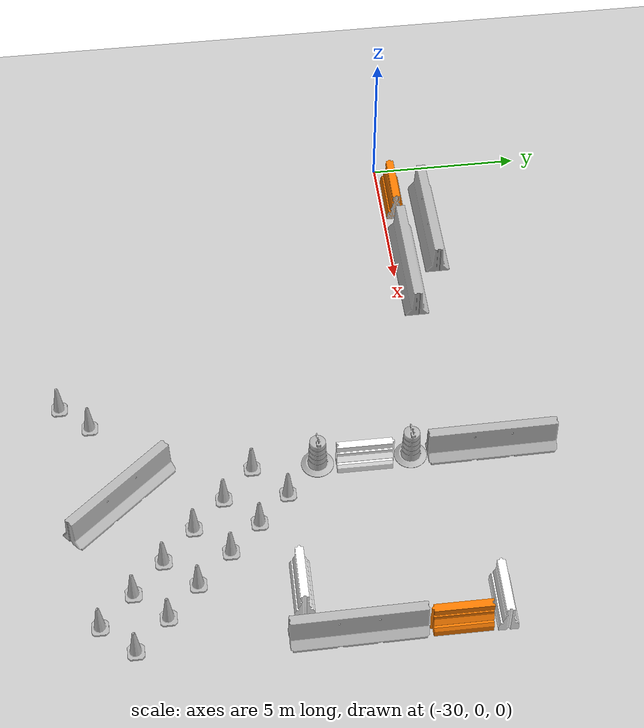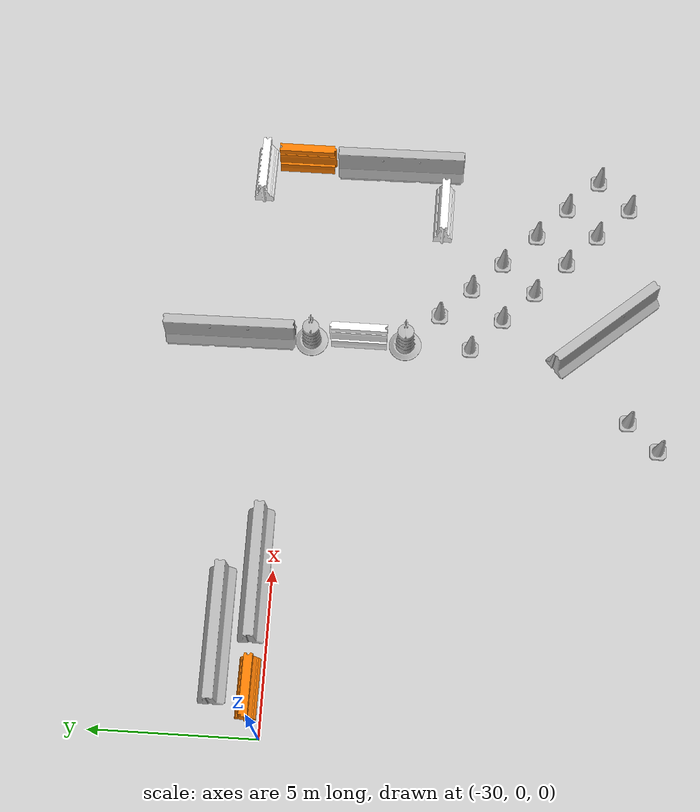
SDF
<sdf version="1.6">
 <world name="default">
  <model name="ground_plane">
   <static>1</static>
   <link name="link">
    <collision name="collision">
     <geometry><plane><normal>0 0 1</normal><size>100 100</size></plane></geometry>
     <surface>
      <contact><collide_bitmask>65535</collide_bitmask></contact>
      <friction><ode><mu>100</mu><mu2>50</mu2></ode></friction>
     </surface>
    </collision>
    <visual name="visual">
     <cast_shadows>0</cast_shadows>
     <geometry><plane><normal>0 0 1</normal><size>100 100</size></plane></geometry>
     <material>
      <script><uri>file://media/materials/scripts/gazebo.material</uri><name>Gazebo/Grey</name></script>
     </material>
    </visual>
   </link>
  </model>
  <model name="jersey_barrier_clone_clone_clone_clone_clone_clone_clone_clone_clone_clone_clone_2">
   <static>1</static>
   <link name="link">
    <visual name="visual">
     <geometry><mesh><uri>model://jersey_barrier/meshes/jersey_barrier.dae</uri></mesh></geometry>
    </visual>
    <collision name="upright">
     <pose>0 0 0.5715 0 -0 0</pose>
     <geometry><box><size>4.06542 0.3063 1.143</size></box></geometry>
    </collision>
    <collision name="base">
     <pose>0 0 0.032258 0 -0 0</pose>
     <geometry><box><size>4.06542 0.8107 0.064516</size></box></geometry>
    </collision>
    <collision name="base2">
     <pose>0 0 0.1 0 -0 0</pose>
     <geometry><box><size>4.06542 0.65 0.1</size></box></geometry>
    </collision>
    <collision name="base3">
     <pose>0 0 0.2 0 -0 0</pose>
     <geometry><box><size>4.06542 0.5 0.1</size></box></geometry>
    </collision>
    <collision name="left-angle">
     <pose>0 -0.224 0.2401 0.9 -0 0</pose>
     <geometry><box><size>4.06542 0.5 0.064516</size></box></geometry>
    </collision>
    <collision name="right-angle">
     <pose>0 0.224 0.2401 -0.9 0 0</pose>
     <geometry><box><size>4.06542 0.5 0.064516</size></box></geometry>
    </collision>
   </link>
   <pose>-17.4835 1.92155 0 0 0 -1.56391</pose>
  </model>
  <model name="Construction Barrel_clone_clone_0_clone_clone_0_clone_clone_0_clone">
   <static>1</static>
   <link name="link">
    <inertial>
     <pose>0 0 0.4 0 -0 0</pose>
     <mass>500</mass>
     <inertia><ixx>51.2096</ixx><iyy>51.2096</iyy><izz>25</izz><ixy>0</ixy><ixz>0</ixz><iyz>0</iyz></inertia>
    </inertial>
    <collision name="collision">
     <geometry><mesh><uri>model://construction_barrel/meshes/construction_barrel.dae</uri></mesh></geometry>
    </collision>
    <visual name="visual">
     <geometry><mesh><uri>model://construction_barrel/meshes/construction_barrel.dae</uri></mesh></geometry>
    </visual>
   </link>
   <pose>-17.5265 -0.623393 -0 0 -0 0.033676</pose>
  </model>
  <model name="drc_practice_white_jersey_barrier_clone_clone_clone_0_clone_0_clone_clone_0_clone_clone_0_clone">
   <static>1</static>
   <link name="link">
    <visual name="visual">
     <geometry>
      <mesh><uri>model://drc_practice_white_jersey_barrier/meshes/jersey_barrier.dae</uri></mesh>
     </geometry>
    </visual>
    <collision name="collision">
     <geometry>
      <mesh><uri>model://drc_practice_white_jersey_barrier/meshes/jersey_barrier.dae</uri></mesh>
     </geometry>
    </collision>
   </link>
   <pose>-17.3927 -2.11412 0 0 -0 3.13979</pose>
  </model>
  <model name="Construction Barrel_clone_clone_0_clone_clone_0_clone_clone_0_clone_clone">
   <static>1</static>
   <link name="link">
    <inertial>
     <pose>0 0 0.4 0 -0 0</pose>
     <mass>500</mass>
     <inertia><ixx>51.2096</ixx><iyy>51.2096</iyy><izz>25</izz><ixy>0</ixy><ixz>0</ixz><iyz>0</iyz></inertia>
    </inertial>
    <collision name="collision">
     <geometry><mesh><uri>model://construction_barrel/meshes/construction_barrel.dae</uri></mesh></geometry>
    </collision>
    <visual name="visual">
     <geometry><mesh><uri>model://construction_barrel/meshes/construction_barrel.dae</uri></mesh></geometry>
    </visual>
   </link>
   <pose>-17.5189 -3.5582 -1e-06 3e-06 9e-06 0.032844</pose>
  </model>
  <model name="drc_practice_organge_jersey_barrier_clone_clone_clone_2_clone_0_clone_clone_clone">
   <static>1</static>
   <link name="link">
    <visual name="visual">
     <geometry>
      <mesh><uri>model://drc_practice_orange_jersey_barrier/meshes/jersey_barrier.dae</uri></mesh>
     </geometry>
    </visual>
    <collision name="collision">
     <geometry>
      <mesh><uri>model://drc_practice_orange_jersey_barrier/meshes/jersey_barrier.dae</uri></mesh>
     </geometry>
    </collision>
   </link>
   <pose>-28.5613 0.437312 0 0 0 -1.57472</pose>
  </model>
  <model name="drc_practice_white_jersey_barrier_clone_clone_clone_clone_clone_clone_clone_clone_clone_clone_0_clone_clone_1_clone">
   <static>1</static>
   <link name="link">
    <visual name="visual">
     <geometry>
      <mesh><uri>model://drc_practice_white_jersey_barrier/meshes/jersey_barrier.dae</uri></mesh>
     </geometry>
    </visual>
    <collision name="collision">
     <geometry>
      <mesh><uri>model://drc_practice_white_jersey_barrier/meshes/jersey_barrier.dae</uri></mesh>
     </geometry>
    </collision>
   </link>
   <pose>-11.8436 1.26227 0 0 0 -1.58176</pose>
  </model>
  <model name="drc_practice_organge_jersey_barrier_clone_clone_0_clone_0_clone_0_clone_clone_clone_1">
   <static>1</static>
   <link name="link">
    <visual name="visual">
     <geometry>
      <mesh><uri>model://drc_practice_orange_jersey_barrier/meshes/jersey_barrier.dae</uri></mesh>
     </geometry>
    </visual>
    <collision name="collision">
     <geometry>
      <mesh><uri>model://drc_practice_orange_jersey_barrier/meshes/jersey_barrier.dae</uri></mesh>
     </geometry>
    </collision>
   </link>
   <pose>-11.3042 -0.061395 0 0 -0 0</pose>
  </model>
  <model name="jersey_barrier_clone_clone_clone_clone_clone_clone_clone_clone_clone_clone_clone_clone_0">
   <static>1</static>
   <link name="link">
    <visual name="visual">
     <geometry><mesh><uri>model://jersey_barrier/meshes/jersey_barrier.dae</uri></mesh></geometry>
    </visual>
    <collision name="upright">
     <pose>0 0 0.5715 0 -0 0</pose>
     <geometry><box><size>4.06542 0.3063 1.143</size></box></geometry>
    </collision>
    <collision name="base">
     <pose>0 0 0.032258 0 -0 0</pose>
     <geometry><box><size>4.06542 0.8107 0.064516</size></box></geometry>
    </collision>
    <collision name="base2">
     <pose>0 0 0.1 0 -0 0</pose>
     <geometry><box><size>4.06542 0.65 0.1</size></box></geometry>
    </collision>
    <collision name="base3">
     <pose>0 0 0.2 0 -0 0</pose>
     <geometry><box><size>4.06542 0.5 0.1</size></box></geometry>
    </collision>
    <collision name="left-angle">
     <pose>0 -0.224 0.2401 0.9 -0 0</pose>
     <geometry><box><size>4.06542 0.5 0.064516</size></box></geometry>
    </collision>
    <collision name="right-angle">
     <pose>0 0.224 0.2401 -0.9 0 0</pose>
     <geometry><box><size>4.06542 0.5 0.064516</size></box></geometry>
    </collision>
   </link>
   <pose>-11.3654 -3.10507 0 0 0 -1.56391</pose>
  </model>
  <model name="drc_practice_white_jersey_barrier_clone_clone_clone_clone_clone_clone_clone_clone_clone_clone_0_clone_clone_1_clone_clone">
   <static>1</static>
   <link name="link">
    <visual name="visual">
     <geometry>
      <mesh><uri>model://drc_practice_white_jersey_barrier/meshes/jersey_barrier.dae</uri></mesh>
     </geometry>
    </visual>
    <collision name="collision">
     <geometry>
      <mesh><uri>model://drc_practice_white_jersey_barrier/meshes/jersey_barrier.dae</uri></mesh>
     </geometry>
    </collision>
   </link>
   <pose>-12.9826 -4.57077 0 0 0 -1.58176</pose>
  </model>
  <model name="Construction Cone_0_clone_0_clone_clone_clone_clone_clone_3_clone_0_clone_clone_clone_1_clone_1_clone_clone_clone_0_clone_5_clone_4">
   <static>1</static>
   <link name="link">
    <collision name="collision">
     <geometry>
      <mesh><scale>10 10 10</scale><uri>model://construction_cone/meshes/construction_cone.dae</uri></mesh>
     </geometry>
    </collision>
    <visual name="visual">
     <geometry>
      <mesh><scale>10 10 10</scale><uri>model://construction_cone/meshes/construction_cone.dae</uri></mesh>
     </geometry>
    </visual>
    <inertial>
     <inertia><ixx>1</ixx><ixy>0</ixy><ixz>0</ixz><iyy>1</iyy><iyz>0</iyz><izz>1</izz></inertia>
     <mass>1</mass>
    </inertial>
   </link>
   <pose>-16.4643 -4.59753 -0 0 0 -0.001073</pose>
  </model>
  <model name="Construction Cone_0_clone_0_clone_clone_clone_clone_clone_3_clone_0_clone_clone_clone_1_clone_1_clone_clone_clone_0_clone_5_clone_5">
   <static>1</static>
   <link name="link">
    <collision name="collision">
     <geometry>
      <mesh><scale>10 10 10</scale><uri>model://construction_cone/meshes/construction_cone.dae</uri></mesh>
     </geometry>
    </collision>
    <visual name="visual">
     <geometry>
      <mesh><scale>10 10 10</scale><uri>model://construction_cone/meshes/construction_cone.dae</uri></mesh>
     </geometry>
    </visual>
    <inertial>
     <inertia><ixx>1</ixx><ixy>0</ixy><ixz>0</ixz><iyy>1</iyy><iyz>0</iyz><izz>1</izz></inertia>
     <mass>1</mass>
    </inertial>
   </link>
   <pose>-15.5027 -5.57397 -0 -0 -0 -0.001073</pose>
  </model>
  <model name="Construction Cone_0_clone_0_clone_clone_clone_clone_clone_3_clone_0_clone_clone_clone_1_clone_1_clone_clone_clone_0_clone_5_clone_6">
   <static>1</static>
   <link name="link">
    <collision name="collision">
     <geometry>
      <mesh><scale>10 10 10</scale><uri>model://construction_cone/meshes/construction_cone.dae</uri></mesh>
     </geometry>
    </collision>
    <visual name="visual">
     <geometry>
      <mesh><scale>10 10 10</scale><uri>model://construction_cone/meshes/construction_cone.dae</uri></mesh>
     </geometry>
    </visual>
    <inertial>
     <inertia><ixx>1</ixx><ixy>0</ixy><ixz>0</ixz><iyy>1</iyy><iyz>0</iyz><izz>1</izz></inertia>
     <mass>1</mass>
    </inertial>
   </link>
   <pose>-14.5585 -6.5324 -0 0 0 -0.001073</pose>
  </model>
  <model name="Construction Cone_0_clone_0_clone_clone_clone_clone_clone_3_clone_0_clone_clone_clone_1_clone_1_clone_clone_clone_0_clone_5_clone_7">
   <static>1</static>
   <link name="link">
    <collision name="collision">
     <geometry>
      <mesh><scale>10 10 10</scale><uri>model://construction_cone/meshes/construction_cone.dae</uri></mesh>
     </geometry>
    </collision>
    <visual name="visual">
     <geometry>
      <mesh><scale>10 10 10</scale><uri>model://construction_cone/meshes/construction_cone.dae</uri></mesh>
     </geometry>
    </visual>
    <inertial>
     <inertia><ixx>1</ixx><ixy>0</ixy><ixz>0</ixz><iyy>1</iyy><iyz>0</iyz><izz>1</izz></inertia>
     <mass>1</mass>
    </inertial>
   </link>
   <pose>-13.5255 -7.59744 -7e-06 6e-06 -0 -0.001073</pose>
  </model>
  <model name="Construction Cone_0_clone_0_clone_clone_clone_clone_clone_3_clone_0_clone_clone_clone_1_clone_1_clone_clone_clone_0_clone_5_clone_8">
   <static>1</static>
   <link name="link">
    <collision name="collision">
     <geometry>
      <mesh><scale>10 10 10</scale><uri>model://construction_cone/meshes/construction_cone.dae</uri></mesh>
     </geometry>
    </collision>
    <visual name="visual">
     <geometry>
      <mesh><scale>10 10 10</scale><uri>model://construction_cone/meshes/construction_cone.dae</uri></mesh>
     </geometry>
    </visual>
    <inertial>
     <inertia><ixx>1</ixx><ixy>0</ixy><ixz>0</ixz><iyy>1</iyy><iyz>0</iyz><izz>1</izz></inertia>
     <mass>1</mass>
    </inertial>
   </link>
   <pose>-12.4931 -8.55582 -0 0 -1e-06 -0.001073</pose>
  </model>
  <model name="Construction Cone_0_clone_0_clone_clone_clone_clone_clone_3_clone_0_clone_clone_clone_1_clone_1_clone_clone_clone_0_clone_5_clone_9">
   <static>1</static>
   <link name="link">
    <collision name="collision">
     <geometry>
      <mesh><scale>10 10 10</scale><uri>model://construction_cone/meshes/construction_cone.dae</uri></mesh>
     </geometry>
    </collision>
    <visual name="visual">
     <geometry>
      <mesh><scale>10 10 10</scale><uri>model://construction_cone/meshes/construction_cone.dae</uri></mesh>
     </geometry>
    </visual>
    <inertial>
     <inertia><ixx>1</ixx><ixy>0</ixy><ixz>0</ixz><iyy>1</iyy><iyz>0</iyz><izz>1</izz></inertia>
     <mass>1</mass>
    </inertial>
   </link>
   <pose>-11.4784 -9.56744 -1e-05 0 0 -0.001073</pose>
  </model>
  <model name="Construction Cone_0_clone_0_clone_clone_clone_clone_clone_3_clone_0_clone_clone_clone_1_clone_1_clone_clone_clone_0_clone_5_clone_10">
   <static>1</static>
   <link name="link">
    <collision name="collision">
     <geometry>
      <mesh><scale>10 10 10</scale><uri>model://construction_cone/meshes/construction_cone.dae</uri></mesh>
     </geometry>
    </collision>
    <visual name="visual">
     <geometry>
      <mesh><scale>10 10 10</scale><uri>model://construction_cone/meshes/construction_cone.dae</uri></mesh>
     </geometry>
    </visual>
    <inertial>
     <inertia><ixx>1</ixx><ixy>0</ixy><ixz>0</ixz><iyy>1</iyy><iyz>0</iyz><izz>1</izz></inertia>
     <mass>1</mass>
    </inertial>
   </link>
   <pose>-17.5473 -5.60449 -0 0 -1e-06 -0.001073</pose>
  </model>
  <model name="Construction Cone_0_clone_0_clone_clone_clone_clone_clone_3_clone_0_clone_clone_clone_1_clone_1_clone_clone_clone_0_clone_5_clone_11">
   <static>1</static>
   <link name="link">
    <collision name="collision">
     <geometry>
      <mesh><scale>10 10 10</scale><uri>model://construction_cone/meshes/construction_cone.dae</uri></mesh>
     </geometry>
    </collision>
    <visual name="visual">
     <geometry>
      <mesh><scale>10 10 10</scale><uri>model://construction_cone/meshes/construction_cone.dae</uri></mesh>
     </geometry>
    </visual>
    <inertial>
     <inertia><ixx>1</ixx><ixy>0</ixy><ixz>0</ixz><iyy>1</iyy><iyz>0</iyz><izz>1</izz></inertia>
     <mass>1</mass>
    </inertial>
   </link>
   <pose>-16.4968 -6.58095 -0 0 -1e-06 -0.001073</pose>
  </model>
  <model name="Construction Cone_0_clone_0_clone_clone_clone_clone_clone_3_clone_0_clone_clone_clone_1_clone_1_clone_clone_clone_0_clone_5_clone_12">
   <static>1</static>
   <link name="link">
    <collision name="collision">
     <geometry>
      <mesh><scale>10 10 10</scale><uri>model://construction_cone/meshes/construction_cone.dae</uri></mesh>
     </geometry>
    </collision>
    <visual name="visual">
     <geometry>
      <mesh><scale>10 10 10</scale><uri>model://construction_cone/meshes/construction_cone.dae</uri></mesh>
     </geometry>
    </visual>
    <inertial>
     <inertia><ixx>1</ixx><ixy>0</ixy><ixz>0</ixz><iyy>1</iyy><iyz>0</iyz><izz>1</izz></inertia>
     <mass>1</mass>
    </inertial>
   </link>
   <pose>-15.517 -7.57493 -0 0 0 -0.001073</pose>
  </model>
  <model name="Construction Cone_0_clone_0_clone_clone_clone_clone_clone_3_clone_0_clone_clone_clone_1_clone_1_clone_clone_clone_0_clone_5_clone_13">
   <static>1</static>
   <link name="link">
    <collision name="collision">
     <geometry>
      <mesh><scale>10 10 10</scale><uri>model://construction_cone/meshes/construction_cone.dae</uri></mesh>
     </geometry>
    </collision>
    <visual name="visual">
     <geometry>
      <mesh><scale>10 10 10</scale><uri>model://construction_cone/meshes/construction_cone.dae</uri></mesh>
     </geometry>
    </visual>
    <inertial>
     <inertia><ixx>1</ixx><ixy>0</ixy><ixz>0</ixz><iyy>1</iyy><iyz>0</iyz><izz>1</izz></inertia>
     <mass>1</mass>
    </inertial>
   </link>
   <pose>-14.4487 -8.56895 -0 0 -1e-06 -0.001073</pose>
  </model>
  <model name="Construction Cone_0_clone_0_clone_clone_clone_clone_clone_3_clone_0_clone_clone_clone_1_clone_1_clone_clone_clone_0_clone_5_clone_14">
   <static>1</static>
   <link name="link">
    <collision name="collision">
     <geometry>
      <mesh><scale>10 10 10</scale><uri>model://construction_cone/meshes/construction_cone.dae</uri></mesh>
     </geometry>
    </collision>
    <visual name="visual">
     <geometry>
      <mesh><scale>10 10 10</scale><uri>model://construction_cone/meshes/construction_cone.dae</uri></mesh>
     </geometry>
    </visual>
    <inertial>
     <inertia><ixx>1</ixx><ixy>0</ixy><ixz>0</ixz><iyy>1</iyy><iyz>0</iyz><izz>1</izz></inertia>
     <mass>1</mass>
    </inertial>
   </link>
   <pose>-13.4161 -9.52723 -9e-06 -1e-06 -0 -0.001073</pose>
  </model>
  <model name="Construction Cone_0_clone_0_clone_clone_clone_clone_clone_3_clone_0_clone_clone_clone_1_clone_1_clone_clone_clone_0_clone_5_clone_15">
   <static>1</static>
   <link name="link">
    <collision name="collision">
     <geometry>
      <mesh><scale>10 10 10</scale><uri>model://construction_cone/meshes/construction_cone.dae</uri></mesh>
     </geometry>
    </collision>
    <visual name="visual">
     <geometry>
      <mesh><scale>10 10 10</scale><uri>model://construction_cone/meshes/construction_cone.dae</uri></mesh>
     </geometry>
    </visual>
    <inertial>
     <inertia><ixx>1</ixx><ixy>0</ixy><ixz>0</ixz><iyy>1</iyy><iyz>0</iyz><izz>1</izz></inertia>
     <mass>1</mass>
    </inertial>
   </link>
   <pose>-12.4008 -10.5568 -0 -0 -0 -0.001073</pose>
  </model>
  <model name="Construction Cone_0_clone_0_clone_clone_clone_clone_clone_3_clone_0_clone_clone_clone_1_clone_1_clone_clone_clone_0_clone_5_clone_12_clone">
   <static>1</static>
   <link name="link">
    <collision name="collision">
     <geometry>
      <mesh><scale>10 10 10</scale><uri>model://construction_cone/meshes/construction_cone.dae</uri></mesh>
     </geometry>
    </collision>
    <visual name="visual">
     <geometry>
      <mesh><scale>10 10 10</scale><uri>model://construction_cone/meshes/construction_cone.dae</uri></mesh>
     </geometry>
    </visual>
    <inertial>
     <inertia><ixx>1</ixx><ixy>0</ixy><ixz>0</ixz><iyy>1</iyy><iyz>0</iyz><izz>1</izz></inertia>
     <mass>1</mass>
    </inertial>
   </link>
   <pose>-19.7099 -10.5562 -0 0 0 -0.001073</pose>
  </model>
  <model name="Construction Cone_0_clone_0_clone_clone_clone_clone_clone_3_clone_0_clone_clone_clone_1_clone_1_clone_clone_clone_0_clone_5_clone_12_clone_0">
   <static>1</static>
   <link name="link">
    <collision name="collision">
     <geometry>
      <mesh><scale>10 10 10</scale><uri>model://construction_cone/meshes/construction_cone.dae</uri></mesh>
     </geometry>
    </collision>
    <visual name="visual">
     <geometry>
      <mesh><scale>10 10 10</scale><uri>model://construction_cone/meshes/construction_cone.dae</uri></mesh>
     </geometry>
    </visual>
    <inertial>
     <inertia><ixx>1</ixx><ixy>0</ixy><ixz>0</ixz><iyy>1</iyy><iyz>0</iyz><izz>1</izz></inertia>
     <mass>1</mass>
    </inertial>
   </link>
   <pose>-20.5778 -11.4844 -9e-06 1e-06 -1e-06 -0.001073</pose>
  </model>
  <model name="jersey_barrier_clone_clone_clone_0_clone_clone_clone_clone_0_clone_0_clone_clone_0_clone_1">
   <static>1</static>
   <link name="link">
    <visual name="visual">
     <geometry><mesh><uri>model://jersey_barrier/meshes/jersey_barrier.dae</uri></mesh></geometry>
    </visual>
    <collision name="upright">
     <pose>0 0 0.5715 0 -0 0</pose>
     <geometry><box><size>4.06542 0.3063 1.143</size></box></geometry>
    </collision>
    <collision name="base">
     <pose>0 0 0.032258 0 -0 0</pose>
     <geometry><box><size>4.06542 0.8107 0.064516</size></box></geometry>
    </collision>
    <collision name="base2">
     <pose>0 0 0.1 0 -0 0</pose>
     <geometry><box><size>4.06542 0.65 0.1</size></box></geometry>
    </collision>
    <collision name="base3">
     <pose>0 0 0.2 0 -0 0</pose>
     <geometry><box><size>4.06542 0.5 0.1</size></box></geometry>
    </collision>
    <collision name="left-angle">
     <pose>0 -0.224 0.2401 0.9 -0 0</pose>
     <geometry><box><size>4.06542 0.5 0.064516</size></box></geometry>
    </collision>
    <collision name="right-angle">
     <pose>0 0.224 0.2401 -0.9 0 0</pose>
     <geometry><box><size>4.06542 0.5 0.064516</size></box></geometry>
    </collision>
   </link>
   <pose>-16.7588 -9.74543 0 0 0 -0.862733</pose>
  </model>
  <model name="jersey_barrier_clone_clone_clone_0_clone_clone_clone_clone_0_clone_0_clone_0">
   <static>1</static>
   <link name="link">
    <visual name="visual">
     <geometry><mesh><uri>model://jersey_barrier/meshes/jersey_barrier.dae</uri></mesh></geometry>
    </visual>
    <collision name="upright">
     <pose>0 0 0.5715 0 -0 0</pose>
     <geometry><box><size>4.06542 0.3063 1.143</size></box></geometry>
    </collision>
    <collision name="base">
     <pose>0 0 0.032258 0 -0 0</pose>
     <geometry><box><size>4.06542 0.8107 0.064516</size></box></geometry>
    </collision>
    <collision name="base2">
     <pose>0 0 0.1 0 -0 0</pose>
     <geometry><box><size>4.06542 0.65 0.1</size></box></geometry>
    </collision>
    <collision name="base3">
     <pose>0 0 0.2 0 -0 0</pose>
     <geometry><box><size>4.06542 0.5 0.1</size></box></geometry>
    </collision>
    <collision name="left-angle">
     <pose>0 -0.224 0.2401 0.9 -0 0</pose>
     <geometry><box><size>4.06542 0.5 0.064516</size></box></geometry>
    </collision>
    <collision name="right-angle">
     <pose>0 0.224 0.2401 -0.9 0 0</pose>
     <geometry><box><size>4.06542 0.5 0.064516</size></box></geometry>
    </collision>
   </link>
   <pose>-25.1822 0.482443 0 0 -0 0</pose>
  </model>
  <model name="jersey_barrier_clone_clone_clone_0_clone_clone_clone_clone_0_clone_0_clone_0_clone">
   <static>1</static>
   <link name="link">
    <visual name="visual">
     <geometry><mesh><uri>model://jersey_barrier/meshes/jersey_barrier.dae</uri></mesh></geometry>
    </visual>
    <collision name="upright">
     <pose>0 0 0.5715 0 -0 0</pose>
     <geometry><box><size>4.06542 0.3063 1.143</size></box></geometry>
    </collision>
    <collision name="base">
     <pose>0 0 0.032258 0 -0 0</pose>
     <geometry><box><size>4.06542 0.8107 0.064516</size></box></geometry>
    </collision>
    <collision name="base2">
     <pose>0 0 0.1 0 -0 0</pose>
     <geometry><box><size>4.06542 0.65 0.1</size></box></geometry>
    </collision>
    <collision name="base3">
     <pose>0 0 0.2 0 -0 0</pose>
     <geometry><box><size>4.06542 0.5 0.1</size></box></geometry>
    </collision>
    <collision name="left-angle">
     <pose>0 -0.224 0.2401 0.9 -0 0</pose>
     <geometry><box><size>4.06542 0.5 0.064516</size></box></geometry>
    </collision>
    <collision name="right-angle">
     <pose>0 0.224 0.2401 -0.9 0 0</pose>
     <geometry><box><size>4.06542 0.5 0.064516</size></box></geometry>
    </collision>
   </link>
   <pose>-27.0381 1.48229 0 0 -0 0</pose>
  </model>
 </world>
</sdf>
